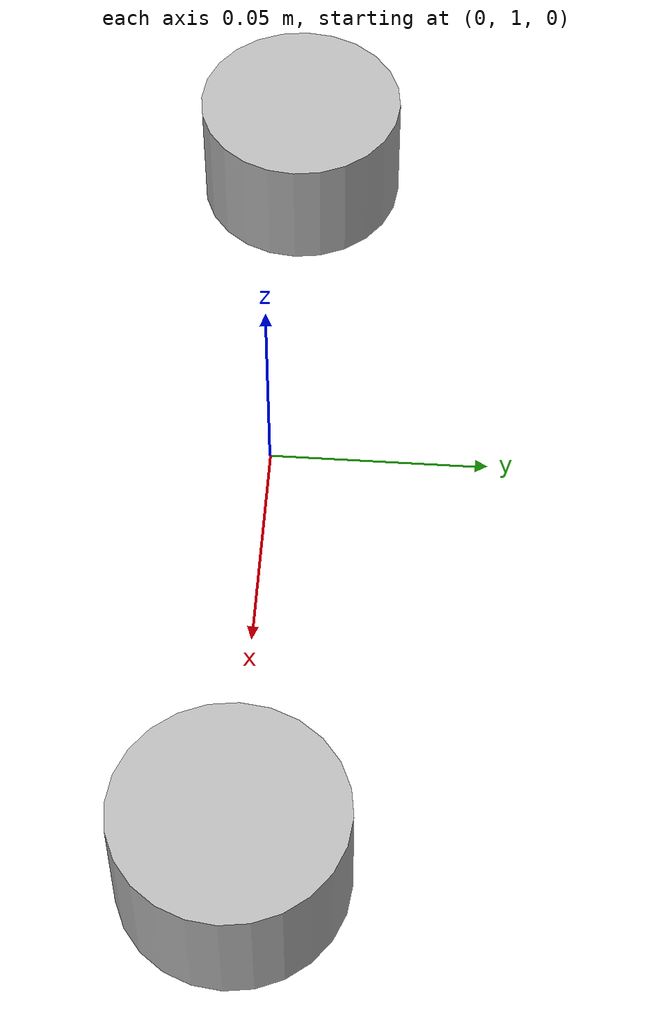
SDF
<?xml version='1.0'?>
<sdf version='1.6'>
		<model name="Base">
			<self_collide>true</self_collide>
			<pose>0.0 0.0 0.0 0.0 0.0 0.0</pose>
			<!-- Start of parts of the pmodel Base -->
				<!-- Start of declarations for part "Base::LWHEEL" -->
					<!-- Start of parts of part "Base::LWHEEL" -->
					<!-- End of parts of part "Base::LWHEEL" -->

					<!-- Start of links of part "Base::LWHEEL" -->
					<!-- link full name is Base::LWHEEL::wheel -->
					<link name="1-wheel">
							<pose>-0.10000000149011612 1.0 0.0 0.0 0.0 0.0</pose>
							<inertial>
								<pose>0.0 0.0 0.0 0.0 0.0 0.0</pose>
								<inertia>
									<ixx>1.0</ixx>
									<ixy>0.0</ixy>
									<ixz>0.0</ixz>
									<iyy>1.0</iyy>
									<iyz>0.0</iyz>
									<izz>1.0</izz>
								</inertia>
								<mass>1.0</mass>
							</inertial>
							<!-- body full name is Base::LWHEEL::wheel::bwheel -->
							<collision name="1--bwheel">
								<laser_retro>0.0</laser_retro>
								<pose>0.0 0.0 0.0 0.0 0.0 0.0</pose>
								<geometry>
									<cylinder>
										<radius>0.02500000037252903</radius>
										<length>0.029999999329447746</length>
									</cylinder>
								</geometry>
								<surface>
									<bounce>
										<restitution_coefficient>0.0</restitution_coefficient>
										<threshold>100000.0</threshold>
									</bounce>
									<friction>
										<ode>
											<mu>1.0</mu>
											<mu2>1.0</mu2>
											<fdir1>0.0 0.0 0.0</fdir1>
											<slip1>0.0</slip1>
											<slip2>0.0</slip2>
										</ode>
										<torsional>
											<coefficient>1.0</coefficient>
											<surface_radius>0.0</surface_radius>
										</torsional>
									</friction>
								</surface>
							</collision>
							<visual name="1--bwheel">
								<laser_retro>0.0</laser_retro>
								<pose>0.0 0.0 0.0 0.0 0.0 0.0</pose>
								<geometry>
									<cylinder>
										<radius>0.02500000037252903</radius>
										<length>0.029999999329447746</length>
									</cylinder>
								</geometry>
								<surface>
									<bounce>
										<restitution_coefficient>0.0</restitution_coefficient>
										<threshold>100000.0</threshold>
									</bounce>
									<friction>
										<ode>
											<mu>1.0</mu>
											<mu2>1.0</mu2>
											<fdir1>0.0 0.0 0.0</fdir1>
											<slip1>0.0</slip1>
											<slip2>0.0</slip2>
										</ode>
										<torsional>
											<coefficient>1.0</coefficient>
											<surface_radius>0.0</surface_radius>
										</torsional>
									</friction>
								</surface>
							</visual>
					</link>
					<!-- End of links of part "Base::LWHEEL" -->

					<!-- Start of joints of part "Base::LWHEEL" -->
					<!-- End of joints of part "Base::LWHEEL" -->

					<!-- Start of fixed connections of part "Base::LWHEEL" -->

					<!-- End of fixed connections of part "Base::LWHEEL" -->
				<!-- End of declarations for part "Base::LWHEEL" -->
				<!-- Start of declarations for part "Base::RWHEEL" -->
					<!-- Start of parts of part "Base::RWHEEL" -->
					<!-- End of parts of part "Base::RWHEEL" -->

					<!-- Start of links of part "Base::RWHEEL" -->
					<!-- link full name is Base::RWHEEL::wheel -->
					<link name="2-wheel">
							<pose>0.10000000149011612 1.0 0.0 0.0 0.0 0.0</pose>
							<inertial>
								<pose>0.0 0.0 0.0 0.0 0.0 0.0</pose>
								<inertia>
									<ixx>1.0</ixx>
									<ixy>0.0</ixy>
									<ixz>0.0</ixz>
									<iyy>1.0</iyy>
									<iyz>0.0</iyz>
									<izz>1.0</izz>
								</inertia>
								<mass>1.0</mass>
							</inertial>
							<!-- body full name is Base::RWHEEL::wheel::bwheel -->
							<collision name="2--bwheel">
								<laser_retro>0.0</laser_retro>
								<pose>0.0 0.0 0.0 0.0 0.0 0.0</pose>
								<geometry>
									<cylinder>
										<radius>0.02500000037252903</radius>
										<length>0.029999999329447746</length>
									</cylinder>
								</geometry>
								<surface>
									<bounce>
										<restitution_coefficient>0.0</restitution_coefficient>
										<threshold>100000.0</threshold>
									</bounce>
									<friction>
										<ode>
											<mu>1.0</mu>
											<mu2>1.0</mu2>
											<fdir1>0.0 0.0 0.0</fdir1>
											<slip1>0.0</slip1>
											<slip2>0.0</slip2>
										</ode>
										<torsional>
											<coefficient>1.0</coefficient>
											<surface_radius>0.0</surface_radius>
										</torsional>
									</friction>
								</surface>
							</collision>
							<visual name="2--bwheel">
								<laser_retro>0.0</laser_retro>
								<pose>0.0 0.0 0.0 0.0 0.0 0.0</pose>
								<geometry>
									<cylinder>
										<radius>0.02500000037252903</radius>
										<length>0.029999999329447746</length>
									</cylinder>
								</geometry>
								<surface>
									<bounce>
										<restitution_coefficient>0.0</restitution_coefficient>
										<threshold>100000.0</threshold>
									</bounce>
									<friction>
										<ode>
											<mu>1.0</mu>
											<mu2>1.0</mu2>
											<fdir1>0.0 0.0 0.0</fdir1>
											<slip1>0.0</slip1>
											<slip2>0.0</slip2>
										</ode>
										<torsional>
											<coefficient>1.0</coefficient>
											<surface_radius>0.0</surface_radius>
										</torsional>
									</friction>
								</surface>
							</visual>
					</link>
					<!-- End of links of part "Base::RWHEEL" -->

					<!-- Start of joints of part "Base::RWHEEL" -->
					<!-- End of joints of part "Base::RWHEEL" -->

					<!-- Start of fixed connections of part "Base::RWHEEL" -->

					<!-- End of fixed connections of part "Base::RWHEEL" -->
				<!-- End of declarations for part "Base::RWHEEL" -->
			<!-- End of parts of the pmodel Base -->

			<!-- Start of links of the pmodel Base -->
			<!-- link full name is Base::Core -->
			<link name="3-Core">
					<pose>0.0 0.0 0.0 0.0 0.0 0.0</pose>
					<inertial>
						<pose>0.0 0.0 0.0 0.0 0.0 0.0</pose>
						<inertia>
							<ixx>1.0</ixx>
							<ixy>0.0</ixy>
							<ixz>0.0</ixz>
							<iyy>1.0</iyy>
							<iyz>0.0</iyz>
							<izz>1.0</izz>
						</inertia>
						<mass>1.0</mass>
					</inertial>
			</link>
			<!-- End of links of the pmodel Base -->

			<!-- Start of joints of the pmodel Base -->
			<!-- Full name of joint: Base::Core::RJ from Base::Core to Base::RWHEEL::wheel-->
			<joint name="4-RJ" type="revolute">
				<pose>-0.10000000149011612 -1.0 0.0 0.0 -0.0 0.0</pose>
				<parent>3-Core</parent>
				<child>2-wheel</child>
				<!-- WARNING: The SDF generator relies on annotations of the joint 4-RJ to specify in SDF aspects of the joint that are
					 accounted for in the equations. -->
			</joint>
			<!-- Full name of joint: Base::Core::LJ from Base::Core to Base::LWHEEL::wheel-->
			<joint name="5-LJ" type="revolute">
				<pose>0.10000000149011612 -1.0 0.0 0.0 -0.0 0.0</pose>
				<parent>3-Core</parent>
				<child>1-wheel</child>
				<!-- WARNING: The SDF generator relies on annotations of the joint 5-LJ to specify in SDF aspects of the joint that are
					 accounted for in the equations. -->
			</joint>
			<!-- End of joints of the pmodel Base -->

			<!-- Start of fixed connections of the pmodel Base -->
			<!-- fixed joint full name is Base::Core::fixedJoint::Base::LWHEEL::wheel from Base::Core to Base::LWHEEL::wheel -->
			<joint name="6-fixedJoint" type="fixed">
				<parent>3-Core</parent>
				<child>1-wheel</child>
				<axis><xyz>0 0 1</xyz></axis>
			</joint>
			<!-- fixed joint full name is Base::Core::fixedJoint::Base::RWHEEL::wheel from Base::Core to Base::RWHEEL::wheel -->
			<joint name="7-fixedJoint" type="fixed">
				<parent>3-Core</parent>
				<child>2-wheel</child>
				<axis><xyz>0 0 1</xyz></axis>
			</joint>
			<!-- End of fixed connections of the pmodel Base -->
		</model>
</sdf>
